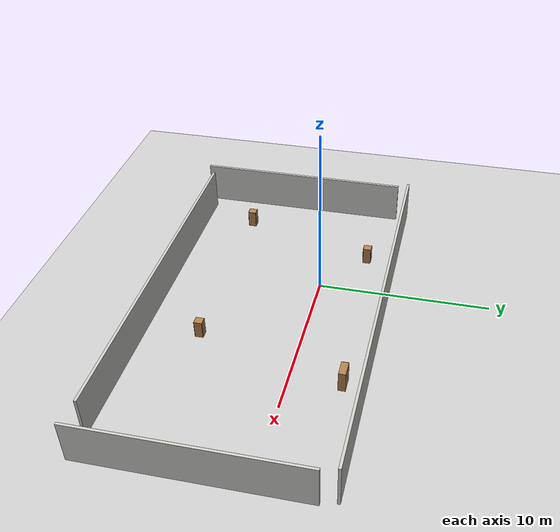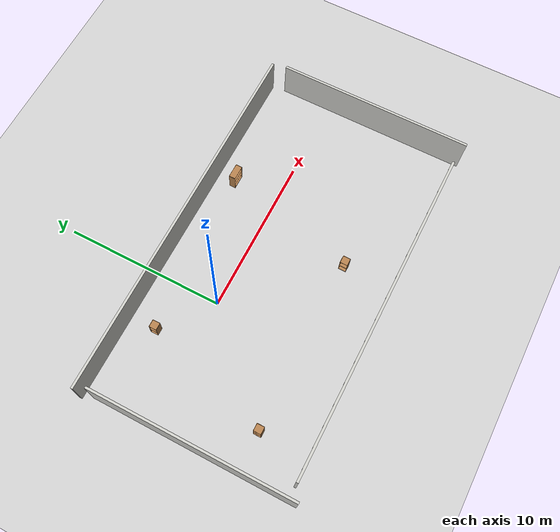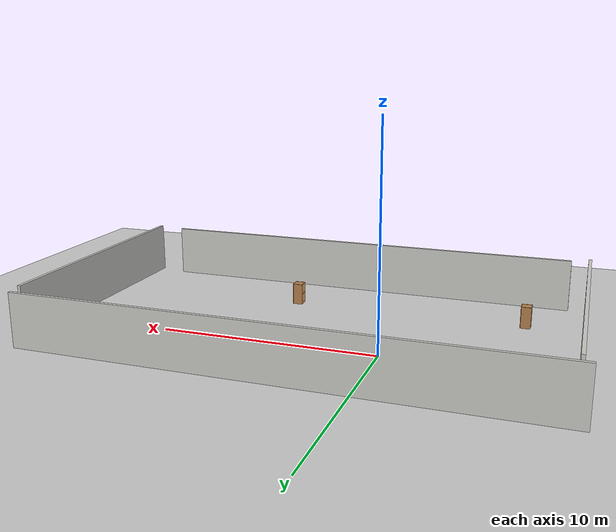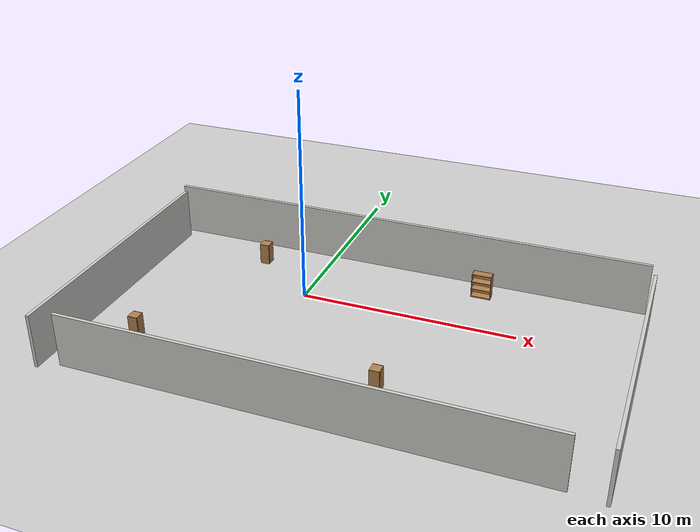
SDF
<sdf version="1.7">
 <world name="default">
  <light name="sun" type="directional">
   <pose>0 0 10 0 -0 0</pose>
   <diffuse>0.8 0.8 0.8 1</diffuse>
   <specular>0.2 0.2 0.2 1</specular>
   <attenuation>
    <range>1000</range>
    <constant>0.9</constant>
    <linear>0.01</linear>
    <quadratic>0.001</quadratic>
   </attenuation>
   <direction>-0.5 0.1 -0.9</direction>
   <spot><inner_angle>0</inner_angle><outer_angle>0</outer_angle><falloff>0</falloff></spot>
  </light>
  <model name="ground_plane">
   <static>1</static>
   <link name="link">
    <collision name="collision">
     <geometry><plane><normal>0 0 1</normal><size>100 100</size></plane></geometry>
     <surface><friction><ode><mu>100</mu><mu2>50</mu2></ode></friction></surface>
    </collision>
    <visual name="visual">
     <cast_shadows>0</cast_shadows>
     <geometry><plane><normal>0 0 1</normal><size>100 100</size></plane></geometry>
     <material>
      <script><uri>file://media/materials/scripts/gazebo.material</uri><name>Gazebo/Grey</name></script>
     </material>
    </visual>
   </link>
  </model>
  <gravity>0 0 -9.8</gravity>
  <magnetic_field>6e-06 2.3e-05 -4.2e-05</magnetic_field>
  <atmosphere type="adiabatic"/>
  <physics type="ode">
   <max_step_size>0.001</max_step_size>
   <real_time_factor>1</real_time_factor>
   <real_time_update_rate>1000</real_time_update_rate>
  </physics>
  <scene><ambient>0.4 0.4 0.4 1</ambient><background>0.7 0.7 0.7 1</background><shadows>1</shadows></scene>
  <audio><device>default</device></audio>
  <spherical_coordinates>
   <surface_model>EARTH_WGS84</surface_model>
   <latitude_deg>0</latitude_deg>
   <longitude_deg>0</longitude_deg>
   <elevation>0</elevation>
   <heading_deg>0</heading_deg>
  </spherical_coordinates>
  <model name="my_world">
   <pose>3.40483 -2.56027 0 0 -0 0</pose>
   <link name="Wall_10">
    <collision name="Wall_10_Collision">
     <geometry><box><size>12.25 0.15 2.5</size></box></geometry>
     <pose>0 0 1.25 0 -0 0</pose>
    </collision>
    <visual name="Wall_10_Visual">
     <pose>0 0 1.25 0 -0 0</pose>
     <geometry><box><size>12.25 0.15 2.5</size></box></geometry>
     <material>
      <script><uri>file://media/materials/scripts/gazebo.material</uri><name>Gazebo/CeilingTiled</name></script>
      <ambient>0.921569 0.807843 0.615686 1</ambient>
     </material>
     <meta><layer>0</layer></meta>
    </visual>
    <pose>11.8078 -0.331214 0 0 -0 -1.5708</pose>
   </link>
   <link name="Wall_12">
    <collision name="Wall_12_Collision">
     <geometry><box><size>12.75 0.15 2.5</size></box></geometry>
     <pose>0 0 1.25 0 -0 0</pose>
    </collision>
    <visual name="Wall_12_Visual">
     <pose>0 0 1.25 0 -0 0</pose>
     <geometry><box><size>12.75 0.15 2.5</size></box></geometry>
     <material>
      <script><uri>file://media/materials/scripts/gazebo.material</uri><name>Gazebo/CeilingTiled</name></script>
      <ambient>0.921569 0.807843 0.615686 1</ambient>
     </material>
     <meta><layer>0</layer></meta>
    </visual>
    <pose>-11.4713 -0.336492 0 0 -0 -1.5708</pose>
   </link>
   <link name="Wall_14">
    <collision name="Wall_14_Collision">
     <geometry><box><size>21 0.15 2.5</size></box></geometry>
     <pose>0 0 1.25 0 -0 0</pose>
    </collision>
    <visual name="Wall_14_Visual">
     <pose>0 0 1.25 0 -0 0</pose>
     <geometry><box><size>21 0.15 2.5</size></box></geometry>
     <material>
      <script><uri>file://media/materials/scripts/gazebo.material</uri><name>Gazebo/CeilingTiled</name></script>
      <ambient>0.996078 0.47451 0.0196078 1</ambient>
     </material>
     <meta><layer>0</layer></meta>
    </visual>
    <pose>-0.128629 -6.18081 0 0 -0 0</pose>
   </link>
   <link name="Wall_8">
    <collision name="Wall_8_Collision">
     <geometry><box><size>23.5 0.15 2.5</size></box></geometry>
     <pose>0 0 1.25 0 -0 0</pose>
    </collision>
    <visual name="Wall_8_Visual">
     <pose>0 0 1.25 0 -0 0</pose>
     <geometry><box><size>23.5 0.15 2.5</size></box></geometry>
     <material>
      <script><uri>file://media/materials/scripts/gazebo.material</uri><name>Gazebo/CeilingTiled</name></script>
      <ambient>0.996078 0.47451 0.0196078 1</ambient>
     </material>
     <meta><layer>0</layer></meta>
    </visual>
    <pose>-0.132829 6.63649 0 0 -0 0</pose>
   </link>
   <static>1</static>
  </model>
  <model name="cabinet">
   <static>1</static>
   <link name="cabinet_bottom_plate">
    <inertial>
     <pose>0 0 -1 0 -0 0</pose>
     <inertia><ixx>2.05</ixx><ixy>0</ixy><ixz>0</ixz><iyy>2.05</iyy><iyz>0</iyz><izz>2.05</izz></inertia>
     <mass>25</mass>
    </inertial>
    <collision name="cabinet_bottom_plate_geom">
     <pose>0 0 0.01 0 -0 0</pose>
     <geometry><box><size>0.45 0.45 0.02</size></box></geometry>
    </collision>
    <visual name="cabinet_bottom_plate_geom_visual">
     <pose>0 0 0.01 0 -0 0</pose>
     <geometry><box><size>0.45 0.45 0.02</size></box></geometry>
     <material>
      <script><uri>file://media/materials/scripts/gazebo.material</uri><name>Gazebo/Wood</name></script>
     </material>
    </visual>
    <collision name="cabinet_bottom_plate_geom_cabinet_back_plate">
     <pose>0.235 0 0.51 0 -0 0</pose>
     <geometry><box><size>0.02 0.45 1.02</size></box></geometry>
    </collision>
    <visual name="cabinet_bottom_plate_geom_cabinet_back_plate_visual">
     <pose>0.235 0 0.51 0 -0 0</pose>
     <geometry><box><size>0.02 0.45 1.02</size></box></geometry>
     <material>
      <script><uri>file://media/materials/scripts/gazebo.material</uri><name>Gazebo/Wood</name></script>
     </material>
    </visual>
    <collision name="cabinet_bottom_plate_geom_cabinet_left_plate">
     <pose>0 0.235 0.51 0 -0 0</pose>
     <geometry><box><size>0.45 0.02 1.02</size></box></geometry>
    </collision>
    <visual name="cabinet_bottom_plate_geom_cabinet_left_plate_visual">
     <pose>0 0.235 0.51 0 -0 0</pose>
     <geometry><box><size>0.45 0.02 1.02</size></box></geometry>
     <material>
      <script><uri>file://media/materials/scripts/gazebo.material</uri><name>Gazebo/Wood</name></script>
     </material>
    </visual>
    <collision name="cabinet_bottom_plate_geom_cabinet_middle_plate">
     <pose>0 0 0.51 0 -0 0</pose>
     <geometry><box><size>0.45 0.45 0.02</size></box></geometry>
    </collision>
    <visual name="cabinet_bottom_plate_geom_cabinet_middle_plate_visual">
     <pose>0 0 0.51 0 -0 0</pose>
     <geometry><box><size>0.45 0.45 0.02</size></box></geometry>
     <material>
      <script><uri>file://media/materials/scripts/gazebo.material</uri><name>Gazebo/Wood</name></script>
     </material>
    </visual>
    <collision name="cabinet_bottom_plate_geom_cabinet_right_plate">
     <pose>0 -0.235 0.51 0 -0 0</pose>
     <geometry><box><size>0.45 0.02 1.02</size></box></geometry>
    </collision>
    <visual name="cabinet_bottom_plate_geom_cabinet_right_plate_visual">
     <pose>0 -0.235 0.51 0 -0 0</pose>
     <geometry><box><size>0.45 0.02 1.02</size></box></geometry>
     <material>
      <script><uri>file://media/materials/scripts/gazebo.material</uri><name>Gazebo/Wood</name></script>
     </material>
    </visual>
    <collision name="cabinet_bottom_plate_geom_cabinet_top_plate">
     <pose>0 0 1.01 0 -0 0</pose>
     <geometry><box><size>0.45 0.45 0.02</size></box></geometry>
    </collision>
    <visual name="cabinet_bottom_plate_geom_cabinet_top_plate_visual">
     <pose>0 0 1.01 0 -0 0</pose>
     <geometry><box><size>0.45 0.45 0.02</size></box></geometry>
     <material>
      <script><uri>file://media/materials/scripts/gazebo.material</uri><name>Gazebo/Wood</name></script>
     </material>
    </visual>
   </link>
   <pose>-5.49684 -5.65173 0 0 -0 0</pose>
  </model>
  <model name="cabinet_0">
   <static>1</static>
   <link name="cabinet_bottom_plate">
    <inertial>
     <pose>0 0 -1 0 -0 0</pose>
     <inertia><ixx>2.05</ixx><ixy>0</ixy><ixz>0</ixz><iyy>2.05</iyy><iyz>0</iyz><izz>2.05</izz></inertia>
     <mass>25</mass>
    </inertial>
    <collision name="cabinet_bottom_plate_geom">
     <pose>0 0 0.01 0 -0 0</pose>
     <geometry><box><size>0.45 0.45 0.02</size></box></geometry>
    </collision>
    <visual name="cabinet_bottom_plate_geom_visual">
     <pose>0 0 0.01 0 -0 0</pose>
     <geometry><box><size>0.45 0.45 0.02</size></box></geometry>
     <material>
      <script><uri>file://media/materials/scripts/gazebo.material</uri><name>Gazebo/Wood</name></script>
     </material>
    </visual>
    <collision name="cabinet_bottom_plate_geom_cabinet_back_plate">
     <pose>0.235 0 0.51 0 -0 0</pose>
     <geometry><box><size>0.02 0.45 1.02</size></box></geometry>
    </collision>
    <visual name="cabinet_bottom_plate_geom_cabinet_back_plate_visual">
     <pose>0.235 0 0.51 0 -0 0</pose>
     <geometry><box><size>0.02 0.45 1.02</size></box></geometry>
     <material>
      <script><uri>file://media/materials/scripts/gazebo.material</uri><name>Gazebo/Wood</name></script>
     </material>
    </visual>
    <collision name="cabinet_bottom_plate_geom_cabinet_left_plate">
     <pose>0 0.235 0.51 0 -0 0</pose>
     <geometry><box><size>0.45 0.02 1.02</size></box></geometry>
    </collision>
    <visual name="cabinet_bottom_plate_geom_cabinet_left_plate_visual">
     <pose>0 0.235 0.51 0 -0 0</pose>
     <geometry><box><size>0.45 0.02 1.02</size></box></geometry>
     <material>
      <script><uri>file://media/materials/scripts/gazebo.material</uri><name>Gazebo/Wood</name></script>
     </material>
    </visual>
    <collision name="cabinet_bottom_plate_geom_cabinet_middle_plate">
     <pose>0 0 0.51 0 -0 0</pose>
     <geometry><box><size>0.45 0.45 0.02</size></box></geometry>
    </collision>
    <visual name="cabinet_bottom_plate_geom_cabinet_middle_plate_visual">
     <pose>0 0 0.51 0 -0 0</pose>
     <geometry><box><size>0.45 0.45 0.02</size></box></geometry>
     <material>
      <script><uri>file://media/materials/scripts/gazebo.material</uri><name>Gazebo/Wood</name></script>
     </material>
    </visual>
    <collision name="cabinet_bottom_plate_geom_cabinet_right_plate">
     <pose>0 -0.235 0.51 0 -0 0</pose>
     <geometry><box><size>0.45 0.02 1.02</size></box></geometry>
    </collision>
    <visual name="cabinet_bottom_plate_geom_cabinet_right_plate_visual">
     <pose>0 -0.235 0.51 0 -0 0</pose>
     <geometry><box><size>0.45 0.02 1.02</size></box></geometry>
     <material>
      <script><uri>file://media/materials/scripts/gazebo.material</uri><name>Gazebo/Wood</name></script>
     </material>
    </visual>
    <collision name="cabinet_bottom_plate_geom_cabinet_top_plate">
     <pose>0 0 1.01 0 -0 0</pose>
     <geometry><box><size>0.45 0.45 0.02</size></box></geometry>
    </collision>
    <visual name="cabinet_bottom_plate_geom_cabinet_top_plate_visual">
     <pose>0 0 1.01 0 -0 0</pose>
     <geometry><box><size>0.45 0.45 0.02</size></box></geometry>
     <material>
      <script><uri>file://media/materials/scripts/gazebo.material</uri><name>Gazebo/Wood</name></script>
     </material>
    </visual>
   </link>
   <pose>-3.06006 2.3443 0 0 -0 0</pose>
  </model>
  <model name="cabinet_1">
   <static>1</static>
   <link name="cabinet_bottom_plate">
    <inertial>
     <pose>0 0 -1 0 -0 0</pose>
     <inertia><ixx>2.05</ixx><ixy>0</ixy><ixz>0</ixz><iyy>2.05</iyy><iyz>0</iyz><izz>2.05</izz></inertia>
     <mass>25</mass>
    </inertial>
    <collision name="cabinet_bottom_plate_geom">
     <pose>0 0 0.01 0 -0 0</pose>
     <geometry><box><size>0.45 0.45 0.02</size></box></geometry>
    </collision>
    <visual name="cabinet_bottom_plate_geom_visual">
     <pose>0 0 0.01 0 -0 0</pose>
     <geometry><box><size>0.45 0.45 0.02</size></box></geometry>
     <material>
      <script><uri>file://media/materials/scripts/gazebo.material</uri><name>Gazebo/Wood</name></script>
     </material>
    </visual>
    <collision name="cabinet_bottom_plate_geom_cabinet_back_plate">
     <pose>0.235 0 0.51 0 -0 0</pose>
     <geometry><box><size>0.02 0.45 1.02</size></box></geometry>
    </collision>
    <visual name="cabinet_bottom_plate_geom_cabinet_back_plate_visual">
     <pose>0.235 0 0.51 0 -0 0</pose>
     <geometry><box><size>0.02 0.45 1.02</size></box></geometry>
     <material>
      <script><uri>file://media/materials/scripts/gazebo.material</uri><name>Gazebo/Wood</name></script>
     </material>
    </visual>
    <collision name="cabinet_bottom_plate_geom_cabinet_left_plate">
     <pose>0 0.235 0.51 0 -0 0</pose>
     <geometry><box><size>0.45 0.02 1.02</size></box></geometry>
    </collision>
    <visual name="cabinet_bottom_plate_geom_cabinet_left_plate_visual">
     <pose>0 0.235 0.51 0 -0 0</pose>
     <geometry><box><size>0.45 0.02 1.02</size></box></geometry>
     <material>
      <script><uri>file://media/materials/scripts/gazebo.material</uri><name>Gazebo/Wood</name></script>
     </material>
    </visual>
    <collision name="cabinet_bottom_plate_geom_cabinet_middle_plate">
     <pose>0 0 0.51 0 -0 0</pose>
     <geometry><box><size>0.45 0.45 0.02</size></box></geometry>
    </collision>
    <visual name="cabinet_bottom_plate_geom_cabinet_middle_plate_visual">
     <pose>0 0 0.51 0 -0 0</pose>
     <geometry><box><size>0.45 0.45 0.02</size></box></geometry>
     <material>
      <script><uri>file://media/materials/scripts/gazebo.material</uri><name>Gazebo/Wood</name></script>
     </material>
    </visual>
    <collision name="cabinet_bottom_plate_geom_cabinet_right_plate">
     <pose>0 -0.235 0.51 0 -0 0</pose>
     <geometry><box><size>0.45 0.02 1.02</size></box></geometry>
    </collision>
    <visual name="cabinet_bottom_plate_geom_cabinet_right_plate_visual">
     <pose>0 -0.235 0.51 0 -0 0</pose>
     <geometry><box><size>0.45 0.02 1.02</size></box></geometry>
     <material>
      <script><uri>file://media/materials/scripts/gazebo.material</uri><name>Gazebo/Wood</name></script>
     </material>
    </visual>
    <collision name="cabinet_bottom_plate_geom_cabinet_top_plate">
     <pose>0 0 1.01 0 -0 0</pose>
     <geometry><box><size>0.45 0.45 0.02</size></box></geometry>
    </collision>
    <visual name="cabinet_bottom_plate_geom_cabinet_top_plate_visual">
     <pose>0 0 1.01 0 -0 0</pose>
     <geometry><box><size>0.45 0.45 0.02</size></box></geometry>
     <material>
      <script><uri>file://media/materials/scripts/gazebo.material</uri><name>Gazebo/Wood</name></script>
     </material>
    </visual>
   </link>
   <pose>5.57671 -5.60565 0 0 -0 0</pose>
  </model>
  <model name="bookshelf">
   <static>1</static>
   <link name="link">
    <inertial><mass>1</mass></inertial>
    <collision name="back">
     <pose>0 0.005 0.6 0 -0 0</pose>
     <geometry><box><size>0.9 0.01 1.2</size></box></geometry>
    </collision>
    <visual name="visual1">
     <pose>0 0.005 0.6 0 -0 0</pose>
     <geometry><box><size>0.9 0.01 1.2</size></box></geometry>
     <material>
      <script><uri>file://media/materials/scripts/gazebo.material</uri><name>Gazebo/Wood</name></script>
     </material>
    </visual>
    <collision name="left_side">
     <pose>0.45 -0.195 0.6 0 -0 0</pose>
     <geometry><box><size>0.02 0.4 1.2</size></box></geometry>
    </collision>
    <visual name="visual2">
     <pose>0.45 -0.195 0.6 0 -0 0</pose>
     <geometry><box><size>0.02 0.4 1.2</size></box></geometry>
     <material>
      <script><uri>file://media/materials/scripts/gazebo.material</uri><name>Gazebo/Wood</name></script>
     </material>
    </visual>
    <collision name="right_side">
     <pose>-0.45 -0.195 0.6 0 -0 0</pose>
     <geometry><box><size>0.02 0.4 1.2</size></box></geometry>
    </collision>
    <visual name="visual3">
     <pose>-0.45 -0.195 0.6 0 -0 0</pose>
     <geometry><box><size>0.02 0.4 1.2</size></box></geometry>
     <material>
      <script><uri>file://media/materials/scripts/gazebo.material</uri><name>Gazebo/Wood</name></script>
     </material>
    </visual>
    <collision name="bottom">
     <pose>0 -0.195 0.03 0 -0 0</pose>
     <geometry><box><size>0.88 0.4 0.06</size></box></geometry>
    </collision>
    <visual name="visual4">
     <pose>0 -0.195 0.03 0 -0 0</pose>
     <geometry><box><size>0.88 0.4 0.06</size></box></geometry>
     <material>
      <script><uri>file://media/materials/scripts/gazebo.material</uri><name>Gazebo/Wood</name></script>
     </material>
    </visual>
    <collision name="top">
     <pose>0 -0.195 1.19 0 -0 0</pose>
     <geometry><box><size>0.88 0.4 0.02</size></box></geometry>
    </collision>
    <visual name="visual5">
     <pose>0 -0.195 1.19 0 -0 0</pose>
     <geometry><box><size>0.88 0.4 0.02</size></box></geometry>
     <material>
      <script><uri>file://media/materials/scripts/gazebo.material</uri><name>Gazebo/Wood</name></script>
     </material>
    </visual>
    <collision name="low_shelf">
     <pose>0 -0.195 0.43 0 -0 0</pose>
     <geometry><box><size>0.88 0.4 0.02</size></box></geometry>
    </collision>
    <visual name="visual6">
     <pose>0 -0.195 0.43 0 -0 0</pose>
     <geometry><box><size>0.88 0.4 0.02</size></box></geometry>
     <material>
      <script><uri>file://media/materials/scripts/gazebo.material</uri><name>Gazebo/Wood</name></script>
     </material>
    </visual>
    <collision name="high_shelf">
     <pose>0 -0.195 0.8 0 -0 0</pose>
     <geometry><box><size>0.88 0.4 0.02</size></box></geometry>
    </collision>
    <visual name="visual7">
     <pose>0 -0.195 0.8 0 -0 0</pose>
     <geometry><box><size>0.88 0.4 0.02</size></box></geometry>
     <material>
      <script><uri>file://media/materials/scripts/gazebo.material</uri><name>Gazebo/Wood</name></script>
     </material>
    </visual>
   </link>
   <pose>7.71845 3.07911 0 0 -0 0</pose>
  </model>
 </world>
</sdf>
